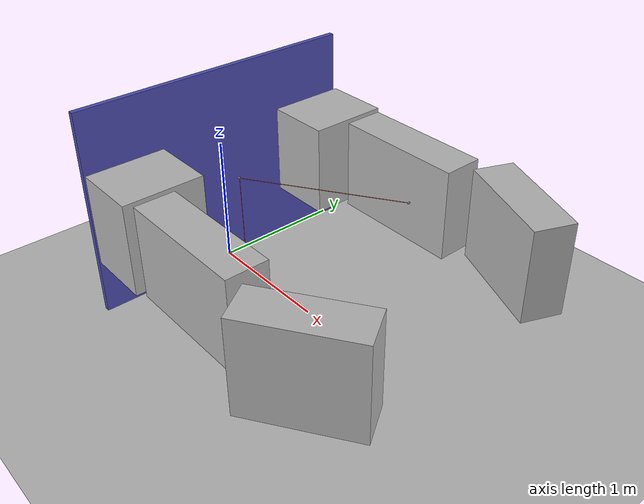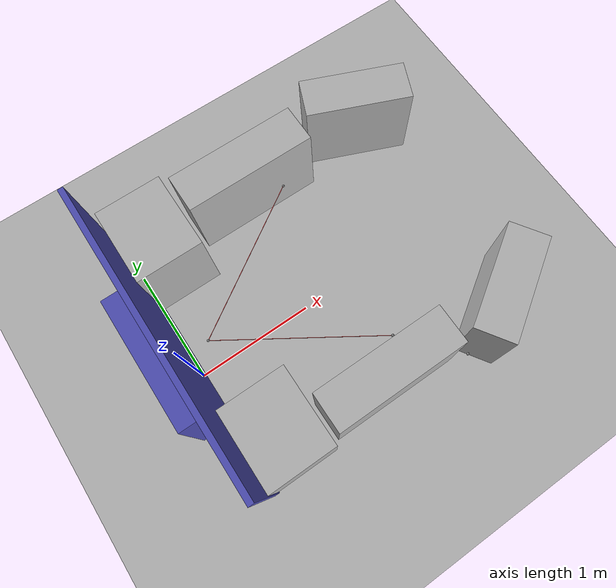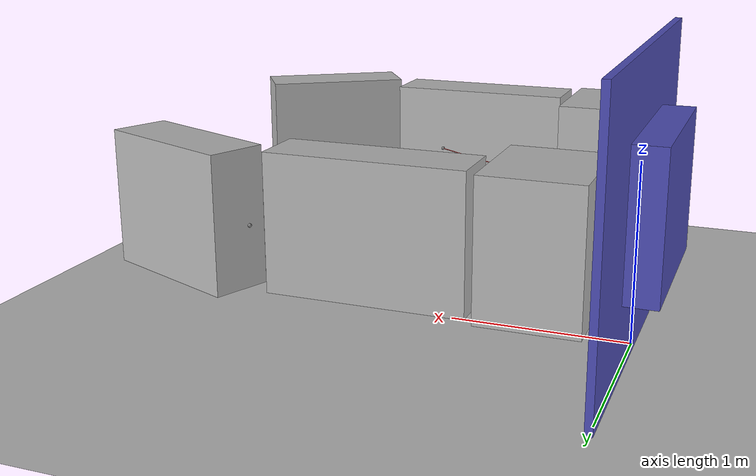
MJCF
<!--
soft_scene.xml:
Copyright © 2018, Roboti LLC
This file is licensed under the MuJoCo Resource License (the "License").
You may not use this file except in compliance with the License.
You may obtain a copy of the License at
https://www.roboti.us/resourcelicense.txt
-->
<mujoco model="soft gripper">

    <compiler angle="radian"
              inertiafromgeom="auto" settotalmass="0.45" balanceinertia="true"/>

    <include file="soft_scene.xml"/>

    <size nconmax="500" njmax="5000" nstack="5000000"/>

    <default>
        <geom density="1" contype="1" conaffinity="1" rgba=".7 .7 .7 1" group="1"/>
        <site type="sphere" size="0.01"/>
        <tendon width="0.02"/>

        <!-- CHANGE HERE-->
        <!-- All changes rearding joint dynamics, box sizes, etc. can be adjusted from here! Digging
        In XML is not advised/-->
        <default class="gripper_sticks_main">
            <geom type="box" size="0.25 0.3 0.35" mass="0.1" contype="1" conaffinity="1"/>
        </default>
        <default class="gripper_sticks_middle">
            <geom type="box" size="0.5 0.15 0.35" mass="0.2" contype="1" conaffinity="1"/>
        </default>
        <default class="gripper_sticks_end">
            <geom type="box" size="0.4 0.15 0.35" mass="0.1" contype="1" conaffinity="1"/>
        </default>

        <!-- Looking from the behind -->
        <default class="finger_left_util">
            <joint type="hinge" range="-0.5 0.1" limited="true"/>
        </default>

        <default class="finger_right_util">
            <joint type="hinge" range="-0.1 0.5"  limited="true"/>
        </default>

        <default class="tinger_twist">
            <joint type="hinge" axis="1 0 0" limited="true" range="-0.01 0.01"/>
        </default>

        <default class="base">
            <geom type="box" quat="0.7 0.7 0.7 0.7" rgba="0.3 0.3 0.7 1"/>
        </default>

    </default>

    <worldbody>
        <body pos="0 0 0.8">

            <!-- GRIPPER BASE-->
            <site name="sBase" pos="0.22 0 0"/>
            <geom class="base" size="0.5 0.4 0.1" pos="-0.1 0 0"/>
            <geom class="base" size="1.1 0.8 0.02"/>

            <!-- FINGERS LEFT -->
            <body pos="0 0.8 0">
                <body pos="0.3 0 0">
                    <geom class="gripper_sticks_main" name="g121"/>
                    <body pos="0.8 0.1 0">
                        <geom class="gripper_sticks_middle" name="g122"/>
                        <joint class="finger_left_util"/>
                        <joint class="tinger_twist"/>
                        <site name="s122" pos="0.2 -0.2 0"/>
                        <body pos="1.0 0 0">
                            <geom class="gripper_sticks_end" name="g123" quat="0.2 0 0 1"/>
                            <joint type="hinge" range="-0.02 0.4"  limited="true"/>
                            <joint class="tinger_twist"/>
                            <site name="sensor1" pos="-0.45 0.2 0"/>
                        </body>
                    </body>
                </body>
            </body>

            <!-- FINGER RIGHT -->
            <body pos="0 -0.8 0">
                <body pos="0.3 0 0">
                    <geom class="gripper_sticks_main" name="g21"/>
                    <body pos="0.8 -0.1 0">
                        <geom class="gripper_sticks_middle" name="g22"/>
                        <joint class="tinger_twist"/>
                        <joint class="finger_right_util"/>
                        <site name="s22" pos="0.2 0.2 0"/>
                        <body pos="1.0 0 0">
                            <geom class="gripper_sticks_end" name="g23" quat="-0.3 0 0 1"/>
                            <joint type="hinge" range="-0.4 0.02"  limited="true"/>
                            <joint class="tinger_twist"/>
                            <site name="sensor2" pos="-0.45 -0.2 0"/>
                        </body>
                    </body>
                </body>
            </body>
        </body>
    </worldbody>

        <!-- TENDONS-->
        <tendon>
            <spatial name="grip_l_12" width="0.002" rgba=".95 .3 .3 1">
                <site site="sBase"/>
                <site site="s122"/>
            </spatial>

            <spatial name="grip_r_21" width="0.002" rgba=".95 .3 .3 1">
                <site site="sBase"/>
                <site site="s22"/>
            </spatial>
        </tendon>

        <!-- ACTUATORS -->
        <actuator>
            <cylinder tendon="grip_l_12" area="1000"/>
            <cylinder tendon="grip_r_21" area="1000" />
        </actuator>

        <!-- SENSORS -->
        <sensor>
            <accelerometer name="a12_sensor" site="sensor1"/>
            <accelerometer name="a21_sensor" site="sensor2"/>
            <gyro name="g12_sensor" site="sensor1"/>
            <gyro name="g21_sensor" site="sensor2"/>
        </sensor>
</mujoco>

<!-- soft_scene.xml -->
<mujoco>

    <statistic extent="2" meansize=".05"/>

    <option timestep="0.005" solver="PGS" iterations="30" tolerance="1e-7" cone="elliptic"/>

    <visual>
        <rgba haze="0.35 0.45 0.55 1"/>
        <quality shadowsize="2048"/>
        <map stiffness="700" shadowscale="0.5" fogstart="10" fogend="15" zfar="40" haze="0.3"/>
    </visual>

    <asset>
        <texture type="skybox" builtin="gradient" rgb1="0.3 0.5 0.7" rgb2="0 0 0" width="512" height="512"/>
        <texture name="texplane" type="2d" builtin="checker" rgb1=".2 .3 .4" rgb2=".1 0.15 0.2"
            width="512" height="512" mark="cross" markrgb=".8 .8 .8"/>
        <texture name="texcarpet" type="2d" file="carpet.png"/>
        <texture name="texmarble" type="cube" file="marble.png"/>

        <texture name="textennis" type="2d" file="tennis.png"/>
        <texture name="texmarshmallow" type="2d" file="marshmallow.png"/>
        <texture name="texsponge" type="2d" file="sponge.png"/>

        <material name="matplane" reflectance="0.05" texture="texplane" texrepeat="1 1" texuniform="true"/>
        <material name="matcarpet" texture="texcarpet"/>

        <material name="mattennis" texture="textennis"/>
        <material name="matmarshmallow" texture="texmarshmallow"/>
        <material name="matsponge" texture="texsponge" specular="0.3"/>

        <material name="matmarble" texture="texmarble" rgba=".7 .7 .7 1"/>
    </asset>

    <worldbody>
        <light directional="true" diffuse=".4 .4 .4" specular="0.1 0.1 0.1" pos="0 0 5.0" dir="0 0 -1" castshadow="false"/>
        <light directional="true" diffuse=".6 .6 .6" specular="0.2 0.2 0.2" pos="0 0 4" dir="0 0 -1"/>

        <geom name="ground" type="plane" size="0 0 1" pos="0 0 0" quat="1 0 0 0" material="matplane" condim="1"/>

    </worldbody>
</mujoco>
